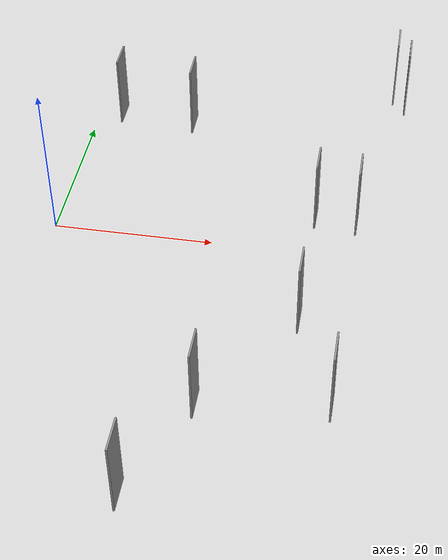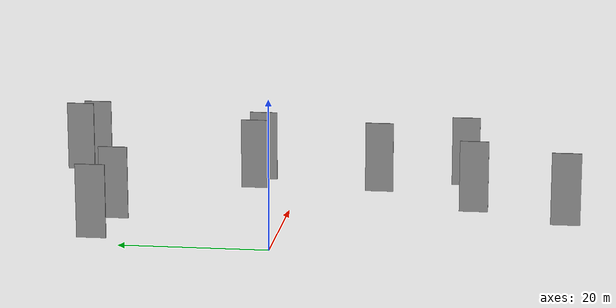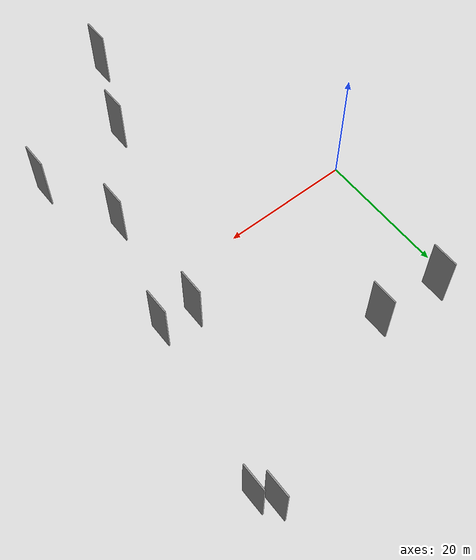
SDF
<sdf version="1.6">
 <world name="default">
  <scene>
   <sky><clouds><speed>12</speed></clouds></sky>
   <ambient>0.4 0.4 0.4 1</ambient>
   <background>0.7 0.7 0.7 1</background>
   <shadows>1</shadows>
  </scene>
  <gravity>0 0 -9.8066</gravity>
  <magnetic_field>6e-06 2.3e-05 -4.2e-05</magnetic_field>
  <physics default="0" name="default_physics" type="ode">
   <ode>
    <solver>
     <type>quick</type>
     <iters>10</iters>
     <sor>1.0</sor>
     <use_dynamic_moi_rescaling>0</use_dynamic_moi_rescaling>
    </solver>
    <constraints>
     <cfm>0</cfm>
     <erp>0.2</erp>
     <contact_max_correcting_vel>100</contact_max_correcting_vel>
     <contact_surface_layer>0.001</contact_surface_layer>
    </constraints>
   </ode>
   <max_step_size>0.004</max_step_size>
   <real_time_factor>1</real_time_factor>
   <real_time_update_rate>250</real_time_update_rate>
  </physics>
  <light name="sun" type="directional">
   <pose>0 0 10 0 0 0</pose>
   <diffuse>0.8 0.8 0.8 1</diffuse>
   <specular>0.2 0.2 0.2 1</specular>
   <attenuation>
    <range>1000</range>
    <constant>0.9</constant>
    <linear>0.01</linear>
    <quadratic>0.001</quadratic>
   </attenuation>
   <direction>-0.5 0.1 -0.9</direction>
  </light>
  <model name="grey_wall_1">
   <static>1</static>
   <pose>40.3954 34.1632 0.0 0.000000 0.000000 1.570796</pose>
   <link name="link">
    <pose>0 0 5.00 0 0 0</pose>
    <collision name="collision"><geometry><box><size>4.00 0.2 10.00</size></box></geometry></collision>
    <visual name="visual">
     <cast_shadows>0</cast_shadows>
     <geometry><box><size>4.00 0.2 10.00</size></box></geometry>
     <material>
      <script>
       <uri>model://grey_wall/materials/scripts</uri>
       <uri>model://grey_wall/materials/textures</uri>
       <name>vrc/grey_wall</name>
      </script>
     </material>
    </visual>
   </link>
  </model>
  <model name="grey_wall_2">
   <static>1</static>
   <pose>32.3054 -11.4205 0.0 0.000000 0.000000 1.570796</pose>
   <link name="link">
    <pose>0 0 5.00 0 0 0</pose>
    <collision name="collision"><geometry><box><size>4.00 0.2 10.00</size></box></geometry></collision>
    <visual name="visual">
     <cast_shadows>0</cast_shadows>
     <geometry><box><size>4.00 0.2 10.00</size></box></geometry>
     <material>
      <script>
       <uri>model://grey_wall/materials/scripts</uri>
       <uri>model://grey_wall/materials/textures</uri>
       <name>vrc/grey_wall</name>
      </script>
     </material>
    </visual>
   </link>
  </model>
  <model name="grey_wall_3">
   <static>1</static>
   <pose>37.4707 6.1007 0.0 0.000000 0.000000 1.570796</pose>
   <link name="link">
    <pose>0 0 5.00 0 0 0</pose>
    <collision name="collision"><geometry><box><size>4.00 0.2 10.00</size></box></geometry></collision>
    <visual name="visual">
     <cast_shadows>0</cast_shadows>
     <geometry><box><size>4.00 0.2 10.00</size></box></geometry>
     <material>
      <script>
       <uri>model://grey_wall/materials/scripts</uri>
       <uri>model://grey_wall/materials/textures</uri>
       <name>vrc/grey_wall</name>
      </script>
     </material>
    </visual>
   </link>
  </model>
  <model name="grey_wall_4">
   <static>1</static>
   <pose>32.2513 6.5942 0.0 0.000000 0.000000 1.570796</pose>
   <link name="link">
    <pose>0 0 5.00 0 0 0</pose>
    <collision name="collision"><geometry><box><size>4.00 0.2 10.00</size></box></geometry></collision>
    <visual name="visual">
     <cast_shadows>0</cast_shadows>
     <geometry><box><size>4.00 0.2 10.00</size></box></geometry>
     <material>
      <script>
       <uri>model://grey_wall/materials/scripts</uri>
       <uri>model://grey_wall/materials/textures</uri>
       <name>vrc/grey_wall</name>
      </script>
     </material>
    </visual>
   </link>
  </model>
  <model name="grey_wall_5">
   <static>1</static>
   <pose>42.0897 31.8693 0.0 0.000000 0.000000 1.570796</pose>
   <link name="link">
    <pose>0 0 5.00 0 0 0</pose>
    <collision name="collision"><geometry><box><size>4.00 0.2 10.00</size></box></geometry></collision>
    <visual name="visual">
     <cast_shadows>0</cast_shadows>
     <geometry><box><size>4.00 0.2 10.00</size></box></geometry>
     <material>
      <script>
       <uri>model://grey_wall/materials/scripts</uri>
       <uri>model://grey_wall/materials/textures</uri>
       <name>vrc/grey_wall</name>
      </script>
     </material>
    </visual>
   </link>
  </model>
  <model name="grey_wall_6">
   <static>1</static>
   <pose>22.6224 -25.4265 0.0 0.000000 0.000000 1.570796</pose>
   <link name="link">
    <pose>0 0 5.00 0 0 0</pose>
    <collision name="collision"><geometry><box><size>4.00 0.2 10.00</size></box></geometry></collision>
    <visual name="visual">
     <cast_shadows>0</cast_shadows>
     <geometry><box><size>4.00 0.2 10.00</size></box></geometry>
     <material>
      <script>
       <uri>model://grey_wall/materials/scripts</uri>
       <uri>model://grey_wall/materials/textures</uri>
       <name>vrc/grey_wall</name>
      </script>
     </material>
    </visual>
   </link>
  </model>
  <model name="grey_wall_7">
   <static>1</static>
   <pose>17.0974 -38.0969 0.0 0.000000 0.000000 1.570796</pose>
   <link name="link">
    <pose>0 0 5.00 0 0 0</pose>
    <collision name="collision"><geometry><box><size>4.00 0.2 10.00</size></box></geometry></collision>
    <visual name="visual">
     <cast_shadows>0</cast_shadows>
     <geometry><box><size>4.00 0.2 10.00</size></box></geometry>
     <material>
      <script>
       <uri>model://grey_wall/materials/scripts</uri>
       <uri>model://grey_wall/materials/textures</uri>
       <name>vrc/grey_wall</name>
      </script>
     </material>
    </visual>
   </link>
  </model>
  <model name="grey_wall_8">
   <static>1</static>
   <pose>3.3083 24.2825 0.0 0.000000 0.000000 1.570796</pose>
   <link name="link">
    <pose>0 0 5.00 0 0 0</pose>
    <collision name="collision"><geometry><box><size>4.00 0.2 10.00</size></box></geometry></collision>
    <visual name="visual">
     <cast_shadows>0</cast_shadows>
     <geometry><box><size>4.00 0.2 10.00</size></box></geometry>
     <material>
      <script>
       <uri>model://grey_wall/materials/scripts</uri>
       <uri>model://grey_wall/materials/textures</uri>
       <name>vrc/grey_wall</name>
      </script>
     </material>
    </visual>
   </link>
  </model>
  <model name="grey_wall_9">
   <static>1</static>
   <pose>13.4296 23.4055 0.0 0.000000 0.000000 1.570796</pose>
   <link name="link">
    <pose>0 0 5.00 0 0 0</pose>
    <collision name="collision"><geometry><box><size>4.00 0.2 10.00</size></box></geometry></collision>
    <visual name="visual">
     <cast_shadows>0</cast_shadows>
     <geometry><box><size>4.00 0.2 10.00</size></box></geometry>
     <material>
      <script>
       <uri>model://grey_wall/materials/scripts</uri>
       <uri>model://grey_wall/materials/textures</uri>
       <name>vrc/grey_wall</name>
      </script>
     </material>
    </visual>
   </link>
  </model>
  <model name="grey_wall_10">
   <static>1</static>
   <pose>37.3570 -23.5976 0.0 0.000000 0.000000 1.570796</pose>
   <link name="link">
    <pose>0 0 5.00 0 0 0</pose>
    <collision name="collision"><geometry><box><size>4.00 0.2 10.00</size></box></geometry></collision>
    <visual name="visual">
     <cast_shadows>0</cast_shadows>
     <geometry><box><size>4.00 0.2 10.00</size></box></geometry>
     <material>
      <script>
       <uri>model://grey_wall/materials/scripts</uri>
       <uri>model://grey_wall/materials/textures</uri>
       <name>vrc/grey_wall</name>
      </script>
     </material>
    </visual>
   </link>
  </model>
 </world>
</sdf>
